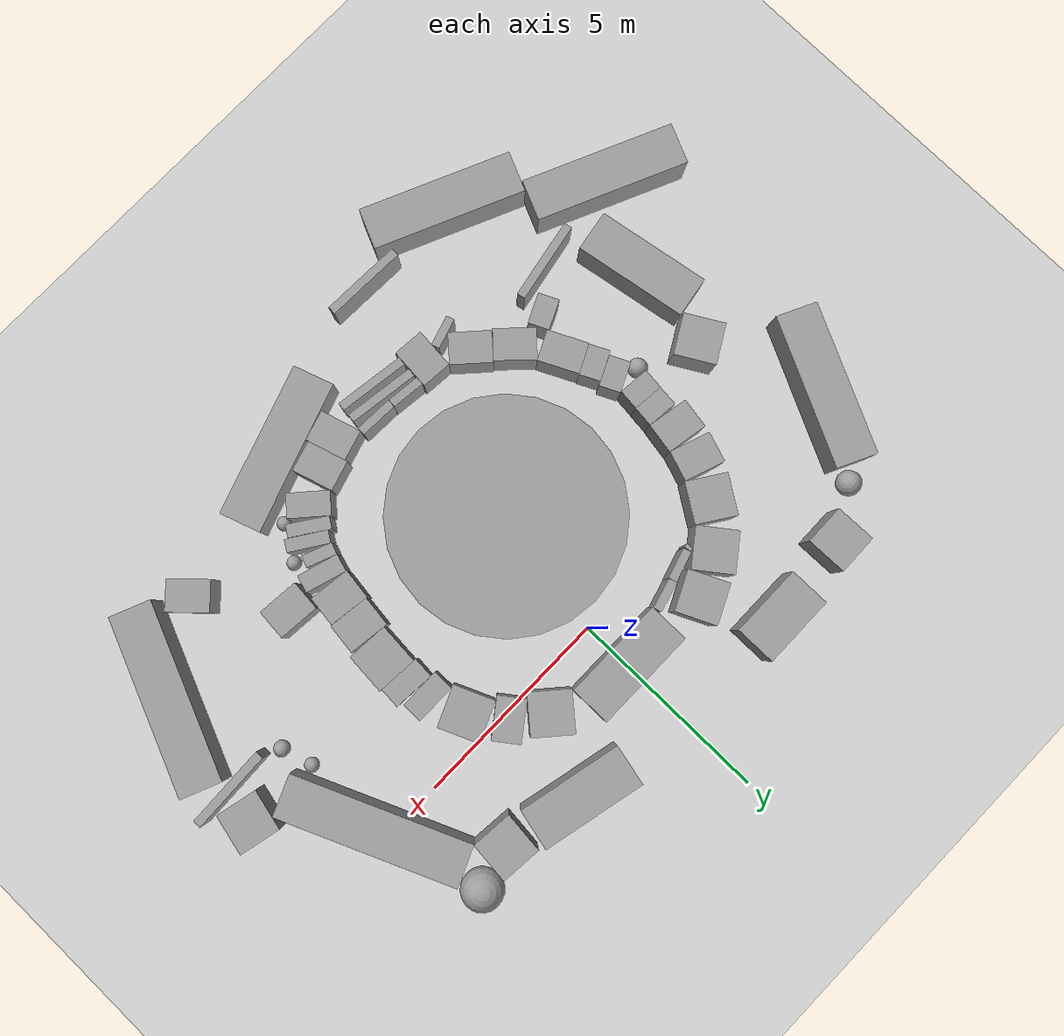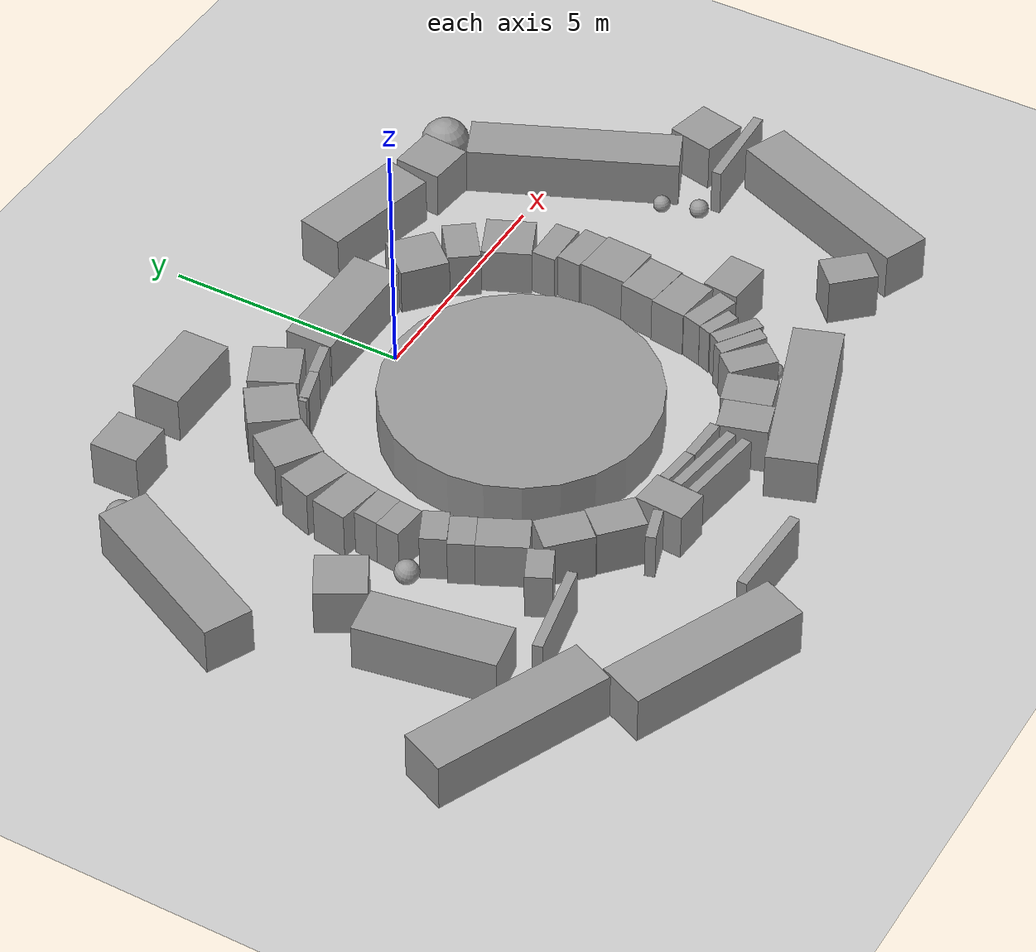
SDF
<sdf version="1.7">
 <world name="default">
  <light name="sun" type="directional">
   <pose>0 0 10 0 -0 0</pose>
   <diffuse>0.8 0.8 0.8 1</diffuse>
   <specular>0.2 0.2 0.2 1</specular>
   <attenuation>
    <range>1000</range>
    <constant>0.9</constant>
    <linear>0.01</linear>
    <quadratic>0.001</quadratic>
   </attenuation>
   <direction>-0.5 0.1 -0.9</direction>
   <spot><inner_angle>0</inner_angle><outer_angle>0</outer_angle><falloff>0</falloff></spot>
  </light>
  <model name="ground_plane">
   <static>1</static>
   <link name="link">
    <collision name="collision">
     <geometry><plane><normal>0 0 1</normal><size>100 100</size></plane></geometry>
     <surface><friction><ode><mu>100</mu><mu2>50</mu2></ode></friction></surface>
    </collision>
    <visual name="visual">
     <cast_shadows>0</cast_shadows>
     <geometry><plane><normal>0 0 1</normal><size>100 100</size></plane></geometry>
     <material>
      <script><uri>file://media/materials/scripts/gazebo.material</uri><name>Gazebo/Grey</name></script>
     </material>
    </visual>
   </link>
  </model>
  <gravity>0 0 -9.8</gravity>
  <magnetic_field>6e-06 2.3e-05 -4.2e-05</magnetic_field>
  <atmosphere type="adiabatic"/>
  <physics type="ode">
   <max_step_size>0.001</max_step_size>
   <real_time_factor>1</real_time_factor>
   <real_time_update_rate>1000</real_time_update_rate>
  </physics>
  <scene><ambient>0.4 0.4 0.4 1</ambient><background>0.7 0.7 0.7 1</background><shadows>1</shadows></scene>
  <spherical_coordinates>
   <surface_model>EARTH_WGS84</surface_model>
   <latitude_deg>0</latitude_deg>
   <longitude_deg>0</longitude_deg>
   <elevation>0</elevation>
   <heading_deg>0</heading_deg>
  </spherical_coordinates>
  <model name="unit_box_0">
   <pose>-7.80395 -6.99372 0.499983 0 -9e-06 -0.421636</pose>
   <link name="link">
    <inertial>
     <mass>1</mass>
     <inertia>
      <ixx>0.166667</ixx>
      <ixy>0</ixy>
      <ixz>0</ixz>
      <iyy>0.166667</iyy>
      <iyz>0</iyz>
      <izz>0.166667</izz>
     </inertia>
    </inertial>
    <collision name="collision"><geometry><box><size>3.71633 1 1</size></box></geometry></collision>
    <visual name="visual">
     <geometry><box><size>3.71633 1 1</size></box></geometry>
     <material>
      <script><name>Gazebo/Grey</name><uri>file://media/materials/scripts/gazebo.material</uri></script>
     </material>
    </visual>
   </link>
  </model>
  <model name="unit_box_1">
   <pose>8.22543 -2.44191 0.5 -0 -0 -0.223006</pose>
   <link name="link">
    <inertial>
     <mass>1</mass>
     <inertia>
      <ixx>0.166667</ixx>
      <ixy>0</ixy>
      <ixz>0</ixz>
      <iyy>0.166667</iyy>
      <iyz>0</iyz>
      <izz>0.166667</izz>
     </inertia>
    </inertial>
    <collision name="collision"><geometry><box><size>1 1 1</size></box></geometry></collision>
    <visual name="visual">
     <geometry><box><size>1 1 1</size></box></geometry>
     <material>
      <script><name>Gazebo/Grey</name><uri>file://media/materials/scripts/gazebo.material</uri></script>
     </material>
    </visual>
   </link>
  </model>
  <model name="unit_sphere">
   <pose>6.74909 -3.084 0.194375 -0.17731 0.130776 -0.168277</pose>
   <link name="link">
    <inertial>
     <mass>1</mass>
     <inertia><ixx>0.1</ixx><ixy>0</ixy><ixz>0</ixz><iyy>0.1</iyy><iyz>0</iyz><izz>0.1</izz></inertia>
    </inertial>
    <collision name="collision"><geometry><sphere><radius>0.194375</radius></sphere></geometry></collision>
    <visual name="visual">
     <geometry><sphere><radius>0.194375</radius></sphere></geometry>
     <material>
      <script><name>Gazebo/Grey</name><uri>file://media/materials/scripts/gazebo.material</uri></script>
     </material>
    </visual>
   </link>
  </model>
  <model name="unit_sphere_clone">
   <pose>3.13762 -6.65474 0.176854 0.356265 -0.091612 -0.137525</pose>
   <link name="link">
    <inertial>
     <mass>1</mass>
     <inertia><ixx>0.1</ixx><ixy>0</ixy><ixz>0</ixz><iyy>0.1</iyy><iyz>0</iyz><izz>0.1</izz></inertia>
    </inertial>
    <collision name="collision"><geometry><sphere><radius>0.176854</radius></sphere></geometry></collision>
    <visual name="visual">
     <geometry><sphere><radius>0.176854</radius></sphere></geometry>
     <material>
      <script><name>Gazebo/Grey</name><uri>file://media/materials/scripts/gazebo.material</uri></script>
     </material>
    </visual>
   </link>
  </model>
  <model name="unit_box_0_clone_0_clone_clone">
   <pose>-7.67082 0.04715 0.5 -1e-06 -0 -2.02175</pose>
   <link name="link">
    <inertial>
     <mass>1</mass>
     <inertia>
      <ixx>0.166667</ixx>
      <ixy>0</ixy>
      <ixz>0</ixz>
      <iyy>0.166667</iyy>
      <iyz>0</iyz>
      <izz>0.166667</izz>
     </inertia>
    </inertial>
    <collision name="collision"><geometry><box><size>3.71633 1 1</size></box></geometry></collision>
    <visual name="visual">
     <geometry><box><size>3.71633 1 1</size></box></geometry>
     <material>
      <script><name>Gazebo/Grey</name><uri>file://media/materials/scripts/gazebo.material</uri></script>
     </material>
    </visual>
   </link>
  </model>
  <model name="unit_box_0_clone_0_clone_clone_clone">
   <pose>-3.13407 2.86523 0.5 0 -0 -3.13276</pose>
   <link name="link">
    <inertial>
     <mass>1</mass>
     <inertia>
      <ixx>0.166667</ixx>
      <ixy>0</ixy>
      <ixz>0</ixz>
      <iyy>0.166667</iyy>
      <iyz>0</iyz>
      <izz>0.166667</izz>
     </inertia>
    </inertial>
    <collision name="collision"><geometry><box><size>1.79516 1 1</size></box></geometry></collision>
    <visual name="visual">
     <geometry><box><size>1.79516 1 1</size></box></geometry>
     <material>
      <script><name>Gazebo/Grey</name><uri>file://media/materials/scripts/gazebo.material</uri></script>
     </material>
    </visual>
   </link>
  </model>
  <model name="unit_box_3">
   <pose>-5.29209 2.65055 0.5 0 -0 0.022351</pose>
   <link name="link">
    <inertial>
     <mass>1</mass>
     <inertia>
      <ixx>0.166667</ixx>
      <ixy>0</ixy>
      <ixz>0</ixz>
      <iyy>0.166667</iyy>
      <iyz>0</iyz>
      <izz>0.166667</izz>
     </inertia>
    </inertial>
    <collision name="collision"><geometry><box><size>1 1 1</size></box></geometry></collision>
    <visual name="visual">
     <geometry><box><size>1 1 1</size></box></geometry>
     <material>
      <script><name>Gazebo/Grey</name><uri>file://media/materials/scripts/gazebo.material</uri></script>
     </material>
    </visual>
   </link>
  </model>
  <model name="unit_box_2_clone">
   <pose>-6.80233 -4.87583 0.499996 0 9e-06 0.169516</pose>
   <link name="link">
    <inertial>
     <mass>1</mass>
     <inertia>
      <ixx>0.166667</ixx>
      <ixy>0</ixy>
      <ixz>0</ixz>
      <iyy>0.166667</iyy>
      <iyz>0</iyz>
      <izz>0.166667</izz>
     </inertia>
    </inertial>
    <collision name="collision"><geometry><box><size>1 2.7758 1</size></box></geometry></collision>
    <visual name="visual">
     <geometry><box><size>1 2.7758 1</size></box></geometry>
     <material>
      <script><name>Gazebo/Grey</name><uri>file://media/materials/scripts/gazebo.material</uri></script>
     </material>
    </visual>
   </link>
  </model>
  <model name="unit_sphere_clone_clone">
   <pose>-5.15411 -3.33385 0.240957 0.275943 -0.030946 0.071281</pose>
   <link name="link">
    <inertial>
     <mass>1</mass>
     <inertia><ixx>0.1</ixx><ixy>0</ixy><ixz>0</ixz><iyy>0.1</iyy><iyz>0</iyz><izz>0.1</izz></inertia>
    </inertial>
    <collision name="collision"><geometry><sphere><radius>0.240957</radius></sphere></geometry></collision>
    <visual name="visual">
     <geometry><sphere><radius>0.240957</radius></sphere></geometry>
     <material>
      <script><name>Gazebo/Grey</name><uri>file://media/materials/scripts/gazebo.material</uri></script>
     </material>
    </visual>
   </link>
  </model>
  <model name="unit_box_3_clone">
   <pose>-6.44853 -2.73205 0.5 0 -0 0.520489</pose>
   <link name="link">
    <inertial>
     <mass>1</mass>
     <inertia>
      <ixx>0.166667</ixx>
      <ixy>0</ixy>
      <ixz>0</ixz>
      <iyy>0.166667</iyy>
      <iyz>0</iyz>
      <izz>0.166667</izz>
     </inertia>
    </inertial>
    <collision name="collision"><geometry><box><size>1 1.00121 1</size></box></geometry></collision>
    <visual name="visual">
     <geometry><box><size>1 1.00121 1</size></box></geometry>
     <material>
      <script><name>Gazebo/Grey</name><uri>file://media/materials/scripts/gazebo.material</uri></script>
     </material>
    </visual>
   </link>
  </model>
  <model name="unit_box_4">
   <pose>6.46134 -0.369842 0.5 -0 -1e-06 0.411142</pose>
   <link name="link">
    <inertial>
     <mass>1</mass>
     <inertia>
      <ixx>0.166667</ixx>
      <ixy>0</ixy>
      <ixz>0</ixz>
      <iyy>0.166667</iyy>
      <iyz>0</iyz>
      <izz>0.166667</izz>
     </inertia>
    </inertial>
    <collision name="collision"><geometry><box><size>1 4.30572 1</size></box></geometry></collision>
    <visual name="visual">
     <geometry><box><size>1 4.30572 1</size></box></geometry>
     <material>
      <script><name>Gazebo/Grey</name><uri>file://media/materials/scripts/gazebo.material</uri></script>
     </material>
    </visual>
   </link>
  </model>
  <model name="unit_box_1_clone">
   <pose>4.70441 1.95362 0.5 0 -0 -0.091493</pose>
   <link name="link">
    <inertial>
     <mass>1</mass>
     <inertia>
      <ixx>0.166667</ixx>
      <ixy>0</ixy>
      <ixz>0</ixz>
      <iyy>0.166667</iyy>
      <iyz>0</iyz>
      <izz>0.166667</izz>
     </inertia>
    </inertial>
    <collision name="collision"><geometry><box><size>1 1 1</size></box></geometry></collision>
    <visual name="visual">
     <geometry><box><size>1 1 1</size></box></geometry>
     <material>
      <script><name>Gazebo/Grey</name><uri>file://media/materials/scripts/gazebo.material</uri></script>
     </material>
    </visual>
   </link>
  </model>
  <model name="unit_sphere_clone_0">
   <pose>3.61825 -5.85086 0.176854 0.001206 0.039265 -0.082265</pose>
   <link name="link">
    <inertial>
     <mass>1</mass>
     <inertia><ixx>0.1</ixx><ixy>0</ixy><ixz>0</ixz><iyy>0.1</iyy><iyz>0</iyz><izz>0.1</izz></inertia>
    </inertial>
    <collision name="collision"><geometry><sphere><radius>0.176854</radius></sphere></geometry></collision>
    <visual name="visual">
     <geometry><sphere><radius>0.176854</radius></sphere></geometry>
     <material>
      <script><name>Gazebo/Grey</name><uri>file://media/materials/scripts/gazebo.material</uri></script>
     </material>
    </visual>
   </link>
  </model>
  <model name="unit_box_4_clone">
   <pose>7.64081 -5.64329 0.499997 0 -7e-06 -0.396628</pose>
   <link name="link">
    <inertial>
     <mass>1</mass>
     <inertia>
      <ixx>0.166667</ixx>
      <ixy>0</ixy>
      <ixz>0</ixz>
      <iyy>0.166667</iyy>
      <iyz>0</iyz>
      <izz>0.166667</izz>
     </inertia>
    </inertial>
    <collision name="collision"><geometry><box><size>1 4.30572 1</size></box></geometry></collision>
    <visual name="visual">
     <geometry><box><size>1 4.30572 1</size></box></geometry>
     <material>
      <script><name>Gazebo/Grey</name><uri>file://media/materials/scripts/gazebo.material</uri></script>
     </material>
    </visual>
   </link>
  </model>
  <model name="unit_sphere_clone_0_clone">
   <pose>6.53597 -2.34604 0.176854 -0.281157 0.137155 -0.014085</pose>
   <link name="link">
    <inertial>
     <mass>1</mass>
     <inertia><ixx>0.1</ixx><ixy>0</ixy><ixz>0</ixz><iyy>0.1</iyy><iyz>0</iyz><izz>0.1</izz></inertia>
    </inertial>
    <collision name="collision"><geometry><sphere><radius>0.176854</radius></sphere></geometry></collision>
    <visual name="visual">
     <geometry><sphere><radius>0.176854</radius></sphere></geometry>
     <material>
      <script><name>Gazebo/Grey</name><uri>file://media/materials/scripts/gazebo.material</uri></script>
     </material>
    </visual>
   </link>
  </model>
  <model name="unit_sphere_0">
   <pose>5.76439 2.25601 0.5 -0.036818 -0.015547 -0.07567</pose>
   <link name="link">
    <inertial>
     <mass>1</mass>
     <inertia><ixx>0.1</ixx><ixy>0</ixy><ixz>0</ixz><iyy>0.1</iyy><iyz>0</iyz><izz>0.1</izz></inertia>
    </inertial>
    <collision name="collision"><geometry><sphere><radius>0.5</radius></sphere></geometry></collision>
    <visual name="visual">
     <geometry><sphere><radius>0.5</radius></sphere></geometry>
     <material>
      <script><name>Gazebo/Grey</name><uri>file://media/materials/scripts/gazebo.material</uri></script>
     </material>
    </visual>
   </link>
  </model>
  <model name="unit_sphere_clone_clone_clone">
   <pose>-6.55487 2.00221 0.302777 0.328933 0.190782 0.081006</pose>
   <link name="link">
    <inertial>
     <mass>1</mass>
     <inertia><ixx>0.1</ixx><ixy>0</ixy><ixz>0</ixz><iyy>0.1</iyy><iyz>0</iyz><izz>0.1</izz></inertia>
    </inertial>
    <collision name="collision"><geometry><sphere><radius>0.302777</radius></sphere></geometry></collision>
    <visual name="visual">
     <geometry><sphere><radius>0.302777</radius></sphere></geometry>
     <material>
      <script><name>Gazebo/Grey</name><uri>file://media/materials/scripts/gazebo.material</uri></script>
     </material>
    </visual>
   </link>
  </model>
  <model name="unit_box_clone">
   <pose>-0.012222 1.16198 0.499932 0 -5.4e-05 0.002367</pose>
   <link name="link">
    <inertial>
     <mass>1</mass>
     <inertia>
      <ixx>0.166667</ixx>
      <ixy>0</ixy>
      <ixz>0</ixz>
      <iyy>0.166667</iyy>
      <iyz>0</iyz>
      <izz>0.166667</izz>
     </inertia>
    </inertial>
    <collision name="collision"><geometry><box><size>2.53382 1 1</size></box></geometry></collision>
    <visual name="visual">
     <geometry><box><size>2.53382 1 1</size></box></geometry>
     <material>
      <script><name>Gazebo/Grey</name><uri>file://media/materials/scripts/gazebo.material</uri></script>
     </material>
    </visual>
   </link>
  </model>
  <model name="unit_box_clone_0">
   <pose>2.79529 2.38941 0.5 0 0 -0.221231</pose>
   <link name="link">
    <inertial>
     <mass>1</mass>
     <inertia>
      <ixx>0.166667</ixx>
      <ixy>0</ixy>
      <ixz>0</ixz>
      <iyy>0.166667</iyy>
      <iyz>0</iyz>
      <izz>0.166667</izz>
     </inertia>
    </inertial>
    <collision name="collision"><geometry><box><size>2.53382 1 1</size></box></geometry></collision>
    <visual name="visual">
     <geometry><box><size>2.53382 1 1</size></box></geometry>
     <material>
      <script><name>Gazebo/Grey</name><uri>file://media/materials/scripts/gazebo.material</uri></script>
     </material>
    </visual>
   </link>
  </model>
  <model name="unit_box_5_clone_1">
   <pose>1.95433 0.657714 0.5 0 -0 -0.720056</pose>
   <link name="link">
    <inertial>
     <mass>1</mass>
     <inertia>
      <ixx>0.166667</ixx>
      <ixy>0</ixy>
      <ixz>0</ixz>
      <iyy>0.166667</iyy>
      <iyz>0</iyz>
      <izz>0.166667</izz>
     </inertia>
    </inertial>
    <collision name="collision"><geometry><box><size>1 1 1</size></box></geometry></collision>
    <visual name="visual">
     <geometry><box><size>1 1 1</size></box></geometry>
     <material>
      <script><name>Gazebo/Grey</name><uri>file://media/materials/scripts/gazebo.material</uri></script>
     </material>
    </visual>
   </link>
  </model>
  <model name="unit_box_5_clone_1_clone">
   <pose>2.6992 0.093203 0.5 0 0 -0.930558</pose>
   <link name="link">
    <inertial>
     <mass>1</mass>
     <inertia>
      <ixx>0.166667</ixx>
      <ixy>0</ixy>
      <ixz>0</ixz>
      <iyy>0.166667</iyy>
      <iyz>0</iyz>
      <izz>0.166667</izz>
     </inertia>
    </inertial>
    <collision name="collision"><geometry><box><size>0.67022 1 1</size></box></geometry></collision>
    <visual name="visual">
     <geometry><box><size>0.67022 1 1</size></box></geometry>
     <material>
      <script><name>Gazebo/Grey</name><uri>file://media/materials/scripts/gazebo.material</uri></script>
     </material>
    </visual>
   </link>
  </model>
  <model name="unit_box_5_clone_1_clone_clone_0">
   <pose>3.2618 -0.668694 0.5 0 -0 -1.15974</pose>
   <link name="link">
    <inertial>
     <mass>1</mass>
     <inertia>
      <ixx>0.166667</ixx>
      <ixy>0</ixy>
      <ixz>0</ixz>
      <iyy>0.166667</iyy>
      <iyz>0</iyz>
      <izz>0.166667</izz>
     </inertia>
    </inertial>
    <collision name="collision"><geometry><box><size>1 1 1</size></box></geometry></collision>
    <visual name="visual">
     <geometry><box><size>1 1 1</size></box></geometry>
     <material>
      <script><name>Gazebo/Grey</name><uri>file://media/materials/scripts/gazebo.material</uri></script>
     </material>
    </visual>
   </link>
  </model>
  <model name="unit_box_5_clone_0_clone">
   <pose>3.69659 -2.08254 0.499999 4e-06 -0 -0.069033</pose>
   <link name="link">
    <inertial>
     <mass>1</mass>
     <inertia>
      <ixx>0.166667</ixx>
      <ixy>0</ixy>
      <ixz>0</ixz>
      <iyy>0.166667</iyy>
      <iyz>0</iyz>
      <izz>0.166667</izz>
     </inertia>
    </inertial>
    <collision name="collision"><geometry><box><size>1 0.504715 1</size></box></geometry></collision>
    <visual name="visual">
     <geometry><box><size>1 0.504715 1</size></box></geometry>
     <material>
      <script><name>Gazebo/Grey</name><uri>file://media/materials/scripts/gazebo.material</uri></script>
     </material>
    </visual>
   </link>
  </model>
  <model name="unit_box_5_clone_0_clone_0">
   <pose>3.01213 -5.85902 0.499997 -0 6e-06 -0.581379</pose>
   <link name="link">
    <inertial>
     <mass>1</mass>
     <inertia>
      <ixx>0.166667</ixx>
      <ixy>0</ixy>
      <ixz>0</ixz>
      <iyy>0.166667</iyy>
      <iyz>0</iyz>
      <izz>0.166667</izz>
     </inertia>
    </inertial>
    <collision name="collision"><geometry><box><size>1 0.304208 1</size></box></geometry></collision>
    <visual name="visual">
     <geometry><box><size>1 0.304208 1</size></box></geometry>
     <material>
      <script><name>Gazebo/Grey</name><uri>file://media/materials/scripts/gazebo.material</uri></script>
     </material>
    </visual>
   </link>
  </model>
  <model name="unit_box_5_clone_0_clone_0_clone">
   <pose>3.53213 -3.72175 0.499987 0 -7e-06 -0.12162</pose>
   <link name="link">
    <inertial>
     <mass>1</mass>
     <inertia>
      <ixx>0.166667</ixx>
      <ixy>0</ixy>
      <ixz>0</ixz>
      <iyy>0.166667</iyy>
      <iyz>0</iyz>
      <izz>0.166667</izz>
     </inertia>
    </inertial>
    <collision name="collision"><geometry><box><size>1 0.746321 1</size></box></geometry></collision>
    <visual name="visual">
     <geometry><box><size>1 0.746321 1</size></box></geometry>
     <material>
      <script><name>Gazebo/Grey</name><uri>file://media/materials/scripts/gazebo.material</uri></script>
     </material>
    </visual>
   </link>
  </model>
  <model name="unit_box_5_clone_0_clone_0_clone_clone">
   <pose>3.40708 -4.46171 0.499997 0 6e-06 -0.128783</pose>
   <link name="link">
    <inertial>
     <mass>1</mass>
     <inertia>
      <ixx>0.166667</ixx>
      <ixy>0</ixy>
      <ixz>0</ixz>
      <iyy>0.166667</iyy>
      <iyz>0</iyz>
      <izz>0.166667</izz>
     </inertia>
    </inertial>
    <collision name="collision"><geometry><box><size>1 0.746321 1</size></box></geometry></collision>
    <visual name="visual">
     <geometry><box><size>1 0.746321 1</size></box></geometry>
     <material>
      <script><name>Gazebo/Grey</name><uri>file://media/materials/scripts/gazebo.material</uri></script>
     </material>
    </visual>
   </link>
  </model>
  <model name="unit_box_5_clone_0_clone_0_clone_clone_0">
   <pose>3.29779 -5.12077 0.499997 0 -6e-06 -0.294978</pose>
   <link name="link">
    <inertial>
     <mass>1</mass>
     <inertia>
      <ixx>0.166667</ixx>
      <ixy>0</ixy>
      <ixz>0</ixz>
      <iyy>0.166667</iyy>
      <iyz>0</iyz>
      <izz>0.166667</izz>
     </inertia>
    </inertial>
    <collision name="collision"><geometry><box><size>1 0.429458 1</size></box></geometry></collision>
    <visual name="visual">
     <geometry><box><size>1 0.429458 1</size></box></geometry>
     <material>
      <script><name>Gazebo/Grey</name><uri>file://media/materials/scripts/gazebo.material</uri></script>
     </material>
    </visual>
   </link>
  </model>
  <model name="unit_box_5_clone_0_clone_0_clone_clone_0_clone">
   <pose>2.41405 -6.42873 0.5 0 0 -0.725755</pose>
   <link name="link">
    <inertial>
     <mass>1</mass>
     <inertia>
      <ixx>0.166667</ixx>
      <ixy>0</ixy>
      <ixz>0</ixz>
      <iyy>0.166667</iyy>
      <iyz>0</iyz>
      <izz>0.166667</izz>
     </inertia>
    </inertial>
    <collision name="collision"><geometry><box><size>1 0.57567 1</size></box></geometry></collision>
    <visual name="visual">
     <geometry><box><size>1 0.57567 1</size></box></geometry>
     <material>
      <script><name>Gazebo/Grey</name><uri>file://media/materials/scripts/gazebo.material</uri></script>
     </material>
    </visual>
   </link>
  </model>
  <model name="unit_box_0_clone_clone_clone">
   <pose>2.01719 -7.8356 0.499995 2e-06 3e-06 0.329258</pose>
   <link name="link">
    <inertial>
     <mass>1</mass>
     <inertia>
      <ixx>0.166667</ixx>
      <ixy>0</ixy>
      <ixz>0</ixz>
      <iyy>0.166667</iyy>
      <iyz>0</iyz>
      <izz>0.166667</izz>
     </inertia>
    </inertial>
    <collision name="collision"><geometry><box><size>3.71633 1 1</size></box></geometry></collision>
    <visual name="visual">
     <geometry><box><size>3.71633 1 1</size></box></geometry>
     <material>
      <script><name>Gazebo/Grey</name><uri>file://media/materials/scripts/gazebo.material</uri></script>
     </material>
    </visual>
   </link>
  </model>
  <model name="unit_box_5_clone_0_clone_0_clone_clone_1_clone_clone_clone_clone">
   <pose>-2.49104 -7.02881 0.500001 -1e-06 0 -1.26718</pose>
   <link name="link">
    <inertial>
     <mass>1</mass>
     <inertia>
      <ixx>0.166667</ixx>
      <ixy>0</ixy>
      <ixz>0</ixz>
      <iyy>0.166667</iyy>
      <iyz>0</iyz>
      <izz>0.166667</izz>
     </inertia>
    </inertial>
    <collision name="collision"><geometry><box><size>0.20058 0.74632 1</size></box></geometry></collision>
    <visual name="visual">
     <geometry><box><size>0.20058 0.74632 1</size></box></geometry>
     <material>
      <script><name>Gazebo/Grey</name><uri>file://media/materials/scripts/gazebo.material</uri></script>
     </material>
    </visual>
   </link>
  </model>
  <model name="unit_box_5_clone_0_clone_0_clone_clone_1_clone_clone_clone_clone_clone">
   <pose>-5.30611 -6.52751 0.499988 -1.3e-05 -1e-06 -1.37957</pose>
   <link name="link">
    <inertial>
     <mass>1</mass>
     <inertia>
      <ixx>0.166667</ixx>
      <ixy>0</ixy>
      <ixz>0</ixz>
      <iyy>0.166667</iyy>
      <iyz>0</iyz>
      <izz>0.166667</izz>
     </inertia>
    </inertial>
    <collision name="collision"><geometry><box><size>0.20058 1.98568 1</size></box></geometry></collision>
    <visual name="visual">
     <geometry><box><size>0.20058 1.98568 1</size></box></geometry>
     <material>
      <script><name>Gazebo/Grey</name><uri>file://media/materials/scripts/gazebo.material</uri></script>
     </material>
    </visual>
   </link>
  </model>
  <model name="unit_box_0_clone_0">
   <pose>-4.69622 -9.21597 0.499992 2e-06 -4e-06 -0.419852</pose>
   <link name="link">
    <inertial>
     <mass>1</mass>
     <inertia>
      <ixx>0.166667</ixx>
      <ixy>0</ixy>
      <ixz>0</ixz>
      <iyy>0.166667</iyy>
      <iyz>0</iyz>
      <izz>0.166667</izz>
     </inertia>
    </inertial>
    <collision name="collision"><geometry><box><size>3.71633 1 1</size></box></geometry></collision>
    <visual name="visual">
     <geometry><box><size>3.71633 1 1</size></box></geometry>
     <material>
      <script><name>Gazebo/Grey</name><uri>file://media/materials/scripts/gazebo.material</uri></script>
     </material>
    </visual>
   </link>
  </model>
  <model name="unit_box_5_clone_0_clone_0_clone_clone_1_clone_clone_clone_clone_clone_clone">
   <pose>-2.07457 -9.15983 0.499987 -1.4e-05 -1e-06 -1.60319</pose>
   <link name="link">
    <inertial>
     <mass>1</mass>
     <inertia>
      <ixx>0.166667</ixx>
      <ixy>0</ixy>
      <ixz>0</ixz>
      <iyy>0.166667</iyy>
      <iyz>0</iyz>
      <izz>0.166667</izz>
     </inertia>
    </inertial>
    <collision name="collision"><geometry><box><size>0.20058 1.98568 1</size></box></geometry></collision>
    <visual name="visual">
     <geometry><box><size>0.20058 1.98568 1</size></box></geometry>
     <material>
      <script><name>Gazebo/Grey</name><uri>file://media/materials/scripts/gazebo.material</uri></script>
     </material>
    </visual>
   </link>
  </model>
  <model name="unit_box_5_clone_0_clone_0_clone_1">
   <pose>-3.43042 -5.66238 0.5 -0 -0 -0.773409</pose>
   <link name="link">
    <inertial>
     <mass>1</mass>
     <inertia>
      <ixx>0.166667</ixx>
      <ixy>0</ixy>
      <ixz>0</ixz>
      <iyy>0.166667</iyy>
      <iyz>0</iyz>
      <izz>0.166667</izz>
     </inertia>
    </inertial>
    <collision name="collision"><geometry><box><size>1 0.746321 1</size></box></geometry></collision>
    <visual name="visual">
     <geometry><box><size>1 0.746321 1</size></box></geometry>
     <material>
      <script><name>Gazebo/Grey</name><uri>file://media/materials/scripts/gazebo.material</uri></script>
     </material>
    </visual>
   </link>
  </model>
  <model name="unit_box_5_clone_0_clone_0_clone_1_clone">
   <pose>-4.06581 -4.75259 0.500001 -2e-06 -0 -1.11635</pose>
   <link name="link">
    <inertial>
     <mass>1</mass>
     <inertia>
      <ixx>0.166667</ixx>
      <ixy>0</ixy>
      <ixz>0</ixz>
      <iyy>0.166667</iyy>
      <iyz>0</iyz>
      <izz>0.166667</izz>
     </inertia>
    </inertial>
    <collision name="collision"><geometry><box><size>1 0.746321 1</size></box></geometry></collision>
    <visual name="visual">
     <geometry><box><size>1 0.746321 1</size></box></geometry>
     <material>
      <script><name>Gazebo/Grey</name><uri>file://media/materials/scripts/gazebo.material</uri></script>
     </material>
    </visual>
   </link>
  </model>
  <model name="unit_box_5_clone_0_clone_0_clone_1_clone_0">
   <pose>-4.38321 -4.06555 0.5 0 -0 -1.11635</pose>
   <link name="link">
    <inertial>
     <mass>1</mass>
     <inertia>
      <ixx>0.166667</ixx>
      <ixy>0</ixy>
      <ixz>0</ixz>
      <iyy>0.166667</iyy>
      <iyz>0</iyz>
      <izz>0.166667</izz>
     </inertia>
    </inertial>
    <collision name="collision"><geometry><box><size>0.513258 0.746321 1</size></box></geometry></collision>
    <visual name="visual">
     <geometry><box><size>0.513258 0.746321 1</size></box></geometry>
     <material>
      <script><name>Gazebo/Grey</name><uri>file://media/materials/scripts/gazebo.material</uri></script>
     </material>
    </visual>
   </link>
  </model>
  <model name="unit_box_5_clone_0_clone_0_clone_1_clone_0_clone">
   <pose>-4.51492 -3.55571 0.5 0 0 -1.12622</pose>
   <link name="link">
    <inertial>
     <mass>1</mass>
     <inertia>
      <ixx>0.166667</ixx>
      <ixy>0</ixy>
      <ixz>0</ixz>
      <iyy>0.166667</iyy>
      <iyz>0</iyz>
      <izz>0.166667</izz>
     </inertia>
    </inertial>
    <collision name="collision"><geometry><box><size>0.513258 0.746321 1</size></box></geometry></collision>
    <visual name="visual">
     <geometry><box><size>0.513258 0.746321 1</size></box></geometry>
     <material>
      <script><name>Gazebo/Grey</name><uri>file://media/materials/scripts/gazebo.material</uri></script>
     </material>
    </visual>
   </link>
  </model>
  <model name="unit_box_5_clone_0_clone_0_clone_1_clone_0_clone_0">
   <pose>-4.43471 -5.71976 0.499996 8e-06 5e-06 -1.12856</pose>
   <link name="link">
    <inertial>
     <mass>1</mass>
     <inertia>
      <ixx>0.166667</ixx>
      <ixy>0</ixy>
      <ixz>0</ixz>
      <iyy>0.166667</iyy>
      <iyz>0</iyz>
      <izz>0.166667</izz>
     </inertia>
    </inertial>
    <collision name="collision"><geometry><box><size>0.513258 0.746321 1</size></box></geometry></collision>
    <visual name="visual">
     <geometry><box><size>0.513258 0.746321 1</size></box></geometry>
     <material>
      <script><name>Gazebo/Grey</name><uri>file://media/materials/scripts/gazebo.material</uri></script>
     </material>
    </visual>
   </link>
  </model>
  <model name="unit_box_5_clone_0_clone_0_clone_1_clone_clone">
   <pose>-4.60728 -2.39031 0.5 0 0 -1.66848</pose>
   <link name="link">
    <inertial>
     <mass>1</mass>
     <inertia>
      <ixx>0.166667</ixx>
      <ixy>0</ixy>
      <ixz>0</ixz>
      <iyy>0.166667</iyy>
      <iyz>0</iyz>
      <izz>0.166667</izz>
     </inertia>
    </inertial>
    <collision name="collision"><geometry><box><size>0.502554 0.746321 1</size></box></geometry></collision>
    <visual name="visual">
     <geometry><box><size>0.502554 0.746321 1</size></box></geometry>
     <material>
      <script><name>Gazebo/Grey</name><uri>file://media/materials/scripts/gazebo.material</uri></script>
     </material>
    </visual>
   </link>
  </model>
  <model name="unit_box_5_clone_0_clone_0_clone_2">
   <pose>-4.62869 -1.72599 0.5 -0 -0 -0.170775</pose>
   <link name="link">
    <inertial>
     <mass>1</mass>
     <inertia>
      <ixx>0.166667</ixx>
      <ixy>0</ixy>
      <ixz>0</ixz>
      <iyy>0.166667</iyy>
      <iyz>0</iyz>
      <izz>0.166667</izz>
     </inertia>
    </inertial>
    <collision name="collision"><geometry><box><size>1 0.746321 1</size></box></geometry></collision>
    <visual name="visual">
     <geometry><box><size>1 0.746321 1</size></box></geometry>
     <material>
      <script><name>Gazebo/Grey</name><uri>file://media/materials/scripts/gazebo.material</uri></script>
     </material>
    </visual>
   </link>
  </model>
  <model name="unit_box_5_clone_0_clone_0_clone_2_clone">
   <pose>-4.43049 -0.927068 0.499988 1e-06 4e-06 -0.330245</pose>
   <link name="link">
    <inertial>
     <mass>1</mass>
     <inertia>
      <ixx>0.166667</ixx>
      <ixy>0</ixy>
      <ixz>0</ixz>
      <iyy>0.166667</iyy>
      <iyz>0</iyz>
      <izz>0.166667</izz>
     </inertia>
    </inertial>
    <collision name="collision"><geometry><box><size>1 0.746321 1</size></box></geometry></collision>
    <visual name="visual">
     <geometry><box><size>1 0.746321 1</size></box></geometry>
     <material>
      <script><name>Gazebo/Grey</name><uri>file://media/materials/scripts/gazebo.material</uri></script>
     </material>
    </visual>
   </link>
  </model>
  <model name="unit_box_5_clone_0_clone_0_clone_1_clone_clone_clone">
   <pose>-4.66219 -2.88989 0.5 0 -0 -1.66848</pose>
   <link name="link">
    <inertial>
     <mass>1</mass>
     <inertia>
      <ixx>0.166667</ixx>
      <ixy>0</ixy>
      <ixz>0</ixz>
      <iyy>0.166667</iyy>
      <iyz>0</iyz>
      <izz>0.166667</izz>
     </inertia>
    </inertial>
    <collision name="collision"><geometry><box><size>0.502555 0.746321 1</size></box></geometry></collision>
    <visual name="visual">
     <geometry><box><size>0.502555 0.746321 1</size></box></geometry>
     <material>
      <script><name>Gazebo/Grey</name><uri>file://media/materials/scripts/gazebo.material</uri></script>
     </material>
    </visual>
   </link>
  </model>
  <model name="unit_box_5_clone_1_clone_0">
   <pose>-3.95957 -0.055475 0.5 0 -0 -0.584127</pose>
   <link name="link">
    <inertial>
     <mass>1</mass>
     <inertia>
      <ixx>0.166667</ixx>
      <ixy>0</ixy>
      <ixz>0</ixz>
      <iyy>0.166667</iyy>
      <iyz>0</iyz>
      <izz>0.166667</izz>
     </inertia>
    </inertial>
    <collision name="collision"><geometry><box><size>1 1 1</size></box></geometry></collision>
    <visual name="visual">
     <geometry><box><size>1 1 1</size></box></geometry>
     <material>
      <script><name>Gazebo/Grey</name><uri>file://media/materials/scripts/gazebo.material</uri></script>
     </material>
    </visual>
   </link>
  </model>
  <model name="unit_box_5_clone_1_clone_1">
   <pose>-3.18097 0.798995 0.499995 -9e-06 -1e-06 -0.926209</pose>
   <link name="link">
    <inertial>
     <mass>1</mass>
     <inertia>
      <ixx>0.166667</ixx>
      <ixy>0</ixy>
      <ixz>0</ixz>
      <iyy>0.166667</iyy>
      <iyz>0</iyz>
      <izz>0.166667</izz>
     </inertia>
    </inertial>
    <collision name="collision"><geometry><box><size>1 1 1</size></box></geometry></collision>
    <visual name="visual">
     <geometry><box><size>1 1 1</size></box></geometry>
     <material>
      <script><name>Gazebo/Grey</name><uri>file://media/materials/scripts/gazebo.material</uri></script>
     </material>
    </visual>
   </link>
  </model>
  <model name="unit_box_5_clone_1_clone_2">
   <pose>-2.21418 1.31011 0.5 -0 -0 -1.12543</pose>
   <link name="link">
    <inertial>
     <mass>1</mass>
     <inertia>
      <ixx>0.166667</ixx>
      <ixy>0</ixy>
      <ixz>0</ixz>
      <iyy>0.166667</iyy>
      <iyz>0</iyz>
      <izz>0.166667</izz>
     </inertia>
    </inertial>
    <collision name="collision"><geometry><box><size>1 1 1</size></box></geometry></collision>
    <visual name="visual">
     <geometry><box><size>1 1 1</size></box></geometry>
     <material>
      <script><name>Gazebo/Grey</name><uri>file://media/materials/scripts/gazebo.material</uri></script>
     </material>
    </visual>
   </link>
  </model>
  <model name="unit_box_5_clone_0_clone_0_clone_clone_1_clone_clone_clone_clone_0">
   <pose>-1.66805 0.683724 0.5 -1e-06 0 -1.3028</pose>
   <link name="link">
    <inertial>
     <mass>1</mass>
     <inertia>
      <ixx>0.166667</ixx>
      <ixy>0</ixy>
      <ixz>0</ixz>
      <iyy>0.166667</iyy>
      <iyz>0</iyz>
      <izz>0.166667</izz>
     </inertia>
    </inertial>
    <collision name="collision"><geometry><box><size>0.20058 0.746321 1</size></box></geometry></collision>
    <visual name="visual">
     <geometry><box><size>0.20058 0.746321 1</size></box></geometry>
     <material>
      <script><name>Gazebo/Grey</name><uri>file://media/materials/scripts/gazebo.material</uri></script>
     </material>
    </visual>
   </link>
  </model>
  <model name="unit_box_5_clone_0_clone_0_clone_clone_1_clone_clone_clone_clone_1">
   <pose>-2.38355 0.463438 0.499997 -8e-06 -2e-06 -1.27908</pose>
   <link name="link">
    <inertial>
     <mass>1</mass>
     <inertia>
      <ixx>0.166667</ixx>
      <ixy>0</ixy>
      <ixz>0</ixz>
      <iyy>0.166667</iyy>
      <iyz>0</iyz>
      <izz>0.166667</izz>
     </inertia>
    </inertial>
    <collision name="collision"><geometry><box><size>0.20058 0.746321 1</size></box></geometry></collision>
    <visual name="visual">
     <geometry><box><size>0.20058 0.746321 1</size></box></geometry>
     <material>
      <script><name>Gazebo/Grey</name><uri>file://media/materials/scripts/gazebo.material</uri></script>
     </material>
    </visual>
   </link>
  </model>
  <model name="unit_box_5_clone_0_clone_0_clone_clone_1_clone_clone_clone_clone_clone_clone_clone_0">
   <pose>-0.479009 -7.002 0.499995 6e-06 -0 -1.70943</pose>
   <link name="link">
    <inertial>
     <mass>1</mass>
     <inertia>
      <ixx>0.166667</ixx>
      <ixy>0</ixy>
      <ixz>0</ixz>
      <iyy>0.166667</iyy>
      <iyz>0</iyz>
      <izz>0.166667</izz>
     </inertia>
    </inertial>
    <collision name="collision"><geometry><box><size>0.20058 1.72468 1</size></box></geometry></collision>
    <visual name="visual">
     <geometry><box><size>0.20058 1.72468 1</size></box></geometry>
     <material>
      <script><name>Gazebo/Grey</name><uri>file://media/materials/scripts/gazebo.material</uri></script>
     </material>
    </visual>
   </link>
  </model>
  <model name="unit_box_5_clone_0_clone_0_clone_clone_1_clone_clone_clone_clone_clone_clone_clone_1">
   <pose>8.03409 -3.25361 0.499987 -1.4e-05 1e-06 -1.52849</pose>
   <link name="link">
    <inertial>
     <mass>1</mass>
     <inertia>
      <ixx>0.166667</ixx>
      <ixy>0</ixy>
      <ixz>0</ixz>
      <iyy>0.166667</iyy>
      <iyz>0</iyz>
      <izz>0.166667</izz>
     </inertia>
    </inertial>
    <collision name="collision"><geometry><box><size>0.20058 1.98568 1</size></box></geometry></collision>
    <visual name="visual">
     <geometry><box><size>0.20058 1.98568 1</size></box></geometry>
     <material>
      <script><name>Gazebo/Grey</name><uri>file://media/materials/scripts/gazebo.material</uri></script>
     </material>
    </visual>
   </link>
  </model>
  <model name="unit_box_5_clone_0_clone_0_clone_clone_1_clone_0_clone_clone_clone_clone_clone">
   <pose>-2.79888 0.333463 0.5 -1e-06 -0 -1.49571</pose>
   <link name="link">
    <inertial>
     <mass>1</mass>
     <inertia>
      <ixx>0.166667</ixx>
      <ixy>0</ixy>
      <ixz>0</ixz>
      <iyy>0.166667</iyy>
      <iyz>0</iyz>
      <izz>0.166667</izz>
     </inertia>
    </inertial>
    <collision name="collision"><geometry><box><size>0.165609 0.089904 1</size></box></geometry></collision>
    <visual name="visual">
     <geometry><box><size>0.165609 0.089904 1</size></box></geometry>
     <material>
      <script><name>Gazebo/Grey</name><uri>file://media/materials/scripts/gazebo.material</uri></script>
     </material>
    </visual>
   </link>
  </model>
  <model name="unit_cylinder">
   <pose>-0.493783 -3.0875 0.5 0 -0 2.8e-05</pose>
   <link name="link">
    <inertial>
     <mass>1</mass>
     <inertia><ixx>0.145833</ixx><ixy>0</ixy><ixz>0</ixz><iyy>0.145833</iyy><iyz>0</iyz><izz>0.125</izz></inertia>
    </inertial>
    <collision name="collision">
     <geometry><cylinder><radius>2.75575</radius><length>1</length></cylinder></geometry>
    </collision>
    <visual name="visual">
     <geometry><cylinder><radius>2.75575</radius><length>1</length></cylinder></geometry>
     <material>
      <script><name>Gazebo/Grey</name><uri>file://media/materials/scripts/gazebo.material</uri></script>
     </material>
    </visual>
   </link>
  </model>
  <model name="unit_box_5_clone_0_clone_0_clone_clone_clone">
   <pose>4.38634 -5.077 0.5 -0 -0 -0.084566</pose>
   <link name="link">
    <inertial>
     <mass>1</mass>
     <inertia>
      <ixx>0.166667</ixx>
      <ixy>0</ixy>
      <ixz>0</ixz>
      <iyy>0.166667</iyy>
      <iyz>0</iyz>
      <izz>0.166667</izz>
     </inertia>
    </inertial>
    <collision name="collision"><geometry><box><size>1 0.746321 1</size></box></geometry></collision>
    <visual name="visual">
     <geometry><box><size>1 0.746321 1</size></box></geometry>
     <material>
      <script><name>Gazebo/Grey</name><uri>file://media/materials/scripts/gazebo.material</uri></script>
     </material>
    </visual>
   </link>
  </model>
  <model name="unit_box_5_clone_0_clone_clone">
   <pose>3.70197 -2.83706 0.499997 0 7e-06 -0.069033</pose>
   <link name="link">
    <inertial>
     <mass>1</mass>
     <inertia>
      <ixx>0.166667</ixx>
      <ixy>0</ixy>
      <ixz>0</ixz>
      <iyy>0.166667</iyy>
      <iyz>0</iyz>
      <izz>0.166667</izz>
     </inertia>
    </inertial>
    <collision name="collision"><geometry><box><size>1 1 1</size></box></geometry></collision>
    <visual name="visual">
     <geometry><box><size>1 1 1</size></box></geometry>
     <material>
      <script><name>Gazebo/Grey</name><uri>file://media/materials/scripts/gazebo.material</uri></script>
     </material>
    </visual>
   </link>
  </model>
  <model name="unit_box_5_clone_0_clone_clone_0">
   <pose>3.58364 -1.54048 0.5 0 -0 0.009338</pose>
   <link name="link">
    <inertial>
     <mass>1</mass>
     <inertia>
      <ixx>0.166667</ixx>
      <ixy>0</ixy>
      <ixz>0</ixz>
      <iyy>0.166667</iyy>
      <iyz>0</iyz>
      <izz>0.166667</izz>
     </inertia>
    </inertial>
    <collision name="collision"><geometry><box><size>1 0.504715 1</size></box></geometry></collision>
    <visual name="visual">
     <geometry><box><size>1 0.504715 1</size></box></geometry>
     <material>
      <script><name>Gazebo/Grey</name><uri>file://media/materials/scripts/gazebo.material</uri></script>
     </material>
    </visual>
   </link>
  </model>
  <model name="unit_box_5_clone_0_clone_0_clone_clone_0_clone_clone">
   <pose>5.71288 -6.90453 0.5 0 -0 -0.815906</pose>
   <link name="link">
    <inertial>
     <mass>1</mass>
     <inertia>
      <ixx>0.166667</ixx>
      <ixy>0</ixy>
      <ixz>0</ixz>
      <iyy>0.166667</iyy>
      <iyz>0</iyz>
      <izz>0.166667</izz>
     </inertia>
    </inertial>
    <collision name="collision"><geometry><box><size>1 0.746321 1</size></box></geometry></collision>
    <visual name="visual">
     <geometry><box><size>1 0.746321 1</size></box></geometry>
     <material>
      <script><name>Gazebo/Grey</name><uri>file://media/materials/scripts/gazebo.material</uri></script>
     </material>
    </visual>
   </link>
  </model>
  <model name="unit_box_5_clone_0_clone_0_clone_clone_0_clone_clone_clone">
   <pose>0.925365 -7.13362 0.499967 0 7e-06 -1.28175</pose>
   <link name="link">
    <inertial>
     <mass>1</mass>
     <inertia>
      <ixx>0.166667</ixx>
      <ixy>0</ixy>
      <ixz>0</ixz>
      <iyy>0.166667</iyy>
      <iyz>0</iyz>
      <izz>0.166667</izz>
     </inertia>
    </inertial>
    <collision name="collision"><geometry><box><size>1 0.746321 1</size></box></geometry></collision>
    <visual name="visual">
     <geometry><box><size>1 0.746321 1</size></box></geometry>
     <material>
      <script><name>Gazebo/Grey</name><uri>file://media/materials/scripts/gazebo.material</uri></script>
     </material>
    </visual>
   </link>
  </model>
  <model name="unit_box_5_clone_0_clone_0_clone_clone_0_clone_clone_clone_clone">
   <pose>1.62167 -6.85679 0.5 -0 -0 -1.28174</pose>
   <link name="link">
    <inertial>
     <mass>1</mass>
     <inertia>
      <ixx>0.166667</ixx>
      <ixy>0</ixy>
      <ixz>0</ixz>
      <iyy>0.166667</iyy>
      <iyz>0</iyz>
      <izz>0.166667</izz>
     </inertia>
    </inertial>
    <collision name="collision"><geometry><box><size>1 0.746321 1</size></box></geometry></collision>
    <visual name="visual">
     <geometry><box><size>1 0.746321 1</size></box></geometry>
     <material>
      <script><name>Gazebo/Grey</name><uri>file://media/materials/scripts/gazebo.material</uri></script>
     </material>
    </visual>
   </link>
  </model>
  <model name="unit_box_5_clone_0_clone_0_clone_1_clone_1">
   <pose>-2.67018 -6.32998 0.5 -0 -0 -0.741841</pose>
   <link name="link">
    <inertial>
     <mass>1</mass>
     <inertia>
      <ixx>0.166667</ixx>
      <ixy>0</ixy>
      <ixz>0</ixz>
      <iyy>0.166667</iyy>
      <iyz>0</iyz>
      <izz>0.166667</izz>
     </inertia>
    </inertial>
    <collision name="collision"><geometry><box><size>1 0.746321 1</size></box></geometry></collision>
    <visual name="visual">
     <geometry><box><size>1 0.746321 1</size></box></geometry>
     <material>
      <script><name>Gazebo/Grey</name><uri>file://media/materials/scripts/gazebo.material</uri></script>
     </material>
    </visual>
   </link>
  </model>
  <model name="unit_box_5_clone_0_clone_0_clone_1_clone_1_clone">
   <pose>-1.72382 -6.92855 0.499997 2e-06 -4e-06 -1.64803</pose>
   <link name="link">
    <inertial>
     <mass>1</mass>
     <inertia>
      <ixx>0.166667</ixx>
      <ixy>0</ixy>
      <ixz>0</ixz>
      <iyy>0.166667</iyy>
      <iyz>0</iyz>
      <izz>0.166667</izz>
     </inertia>
    </inertial>
    <collision name="collision"><geometry><box><size>1 0.746321 1</size></box></geometry></collision>
    <visual name="visual">
     <geometry><box><size>1 0.746321 1</size></box></geometry>
     <material>
      <script><name>Gazebo/Grey</name><uri>file://media/materials/scripts/gazebo.material</uri></script>
     </material>
    </visual>
   </link>
  </model>
  <model name="unit_box_5_clone_0_clone_0_clone_clone_0_clone_0">
   <pose>3.04923 -5.45127 0.5 -0 -0 -0.379655</pose>
   <link name="link">
    <inertial>
     <mass>1</mass>
     <inertia>
      <ixx>0.166667</ixx>
      <ixy>0</ixy>
      <ixz>0</ixz>
      <iyy>0.166667</iyy>
      <iyz>0</iyz>
      <izz>0.166667</izz>
     </inertia>
    </inertial>
    <collision name="collision"><geometry><box><size>0.732932 0.286543 1</size></box></geometry></collision>
    <visual name="visual">
     <geometry><box><size>0.732932 0.286543 1</size></box></geometry>
     <material>
      <script><name>Gazebo/Grey</name><uri>file://media/materials/scripts/gazebo.material</uri></script>
     </material>
    </visual>
   </link>
  </model>
  <model name="unit_box_5_clone_0_clone_0_clone_0">
   <pose>2.76647 -6.06991 0.499996 0 7e-06 -0.598236</pose>
   <link name="link">
    <inertial>
     <mass>1</mass>
     <inertia>
      <ixx>0.166667</ixx>
      <ixy>0</ixy>
      <ixz>0</ixz>
      <iyy>0.166667</iyy>
      <iyz>0</iyz>
      <izz>0.166667</izz>
     </inertia>
    </inertial>
    <collision name="collision"><geometry><box><size>1 0.304208 1</size></box></geometry></collision>
    <visual name="visual">
     <geometry><box><size>1 0.304208 1</size></box></geometry>
     <material>
      <script><name>Gazebo/Grey</name><uri>file://media/materials/scripts/gazebo.material</uri></script>
     </material>
    </visual>
   </link>
  </model>
  <model name="unit_box_5_clone_0_clone_0_clone_clone_1_clone_clone_clone_clone_clone_clone_clone_0_clone">
   <pose>-0.915522 -6.65849 0.5 -1e-06 -0 -1.68672</pose>
   <link name="link">
    <inertial>
     <mass>1</mass>
     <inertia>
      <ixx>0.166667</ixx>
      <ixy>0</ixy>
      <ixz>0</ixz>
      <iyy>0.166667</iyy>
      <iyz>0</iyz>
      <izz>0.166667</izz>
     </inertia>
    </inertial>
    <collision name="collision"><geometry><box><size>0.20058 0.816439 1</size></box></geometry></collision>
    <visual name="visual">
     <geometry><box><size>0.20058 0.816439 1</size></box></geometry>
     <material>
      <script><name>Gazebo/Grey</name><uri>file://media/materials/scripts/gazebo.material</uri></script>
     </material>
    </visual>
   </link>
  </model>
  <model name="unit_box_5_clone_0_clone_0_clone_clone_1_clone_clone_clone_clone_clone_clone_clone_0_clone_0">
   <pose>-0.51158 -7.34463 0.499995 -6e-06 -0 -1.70883</pose>
   <link name="link">
    <inertial>
     <mass>1</mass>
     <inertia>
      <ixx>0.166667</ixx>
      <ixy>0</ixy>
      <ixz>0</ixz>
      <iyy>0.166667</iyy>
      <iyz>0</iyz>
      <izz>0.166667</izz>
     </inertia>
    </inertial>
    <collision name="collision"><geometry><box><size>0.20058 1.72468 1</size></box></geometry></collision>
    <visual name="visual">
     <geometry><box><size>0.20058 1.72468 1</size></box></geometry>
     <material>
      <script><name>Gazebo/Grey</name><uri>file://media/materials/scripts/gazebo.material</uri></script>
     </material>
    </visual>
   </link>
  </model>
  <model name="unit_box_5_clone_0_clone_0_clone_clone_1_clone_clone_clone_clone_clone_clone_clone_0_clone_clone">
   <pose>-0.038424 -6.72726 0.499967 -7e-06 1e-06 -1.60845</pose>
   <link name="link">
    <inertial>
     <mass>1</mass>
     <inertia>
      <ixx>0.166667</ixx>
      <ixy>0</ixy>
      <ixz>0</ixz>
      <iyy>0.166667</iyy>
      <iyz>0</iyz>
      <izz>0.166667</izz>
     </inertia>
    </inertial>
    <collision name="collision"><geometry><box><size>0.20058 0.929042 1</size></box></geometry></collision>
    <visual name="visual">
     <geometry><box><size>0.20058 0.929042 1</size></box></geometry>
     <material>
      <script><name>Gazebo/Grey</name><uri>file://media/materials/scripts/gazebo.material</uri></script>
     </material>
    </visual>
   </link>
  </model>
  <model name="unit_box_5_clone_0_clone_0_clone_clone_1_clone_0_clone_clone_clone_clone_clone_clone">
   <pose>-2.89541 0.323352 0.164799 5e-06 -0.002202 -1.1616</pose>
   <link name="link">
    <inertial>
     <mass>1</mass>
     <inertia>
      <ixx>0.166667</ixx>
      <ixy>0</ixy>
      <ixz>0</ixz>
      <iyy>0.166667</iyy>
      <iyz>0</iyz>
      <izz>0.166667</izz>
     </inertia>
    </inertial>
    <collision name="collision">
     <geometry><box><size>0.0511671 0.089904 0.329485</size></box></geometry>
    </collision>
    <visual name="visual">
     <geometry><box><size>0.0511671 0.089904 0.329485</size></box></geometry>
     <material>
      <script><name>Gazebo/Grey</name><uri>file://media/materials/scripts/gazebo.material</uri></script>
     </material>
    </visual>
   </link>
  </model>
 </world>
</sdf>
